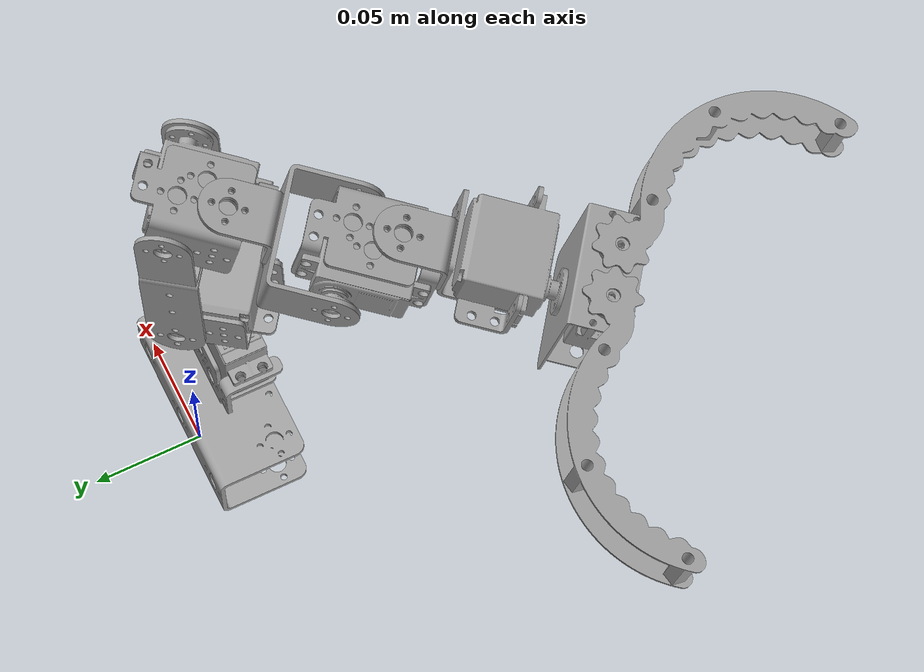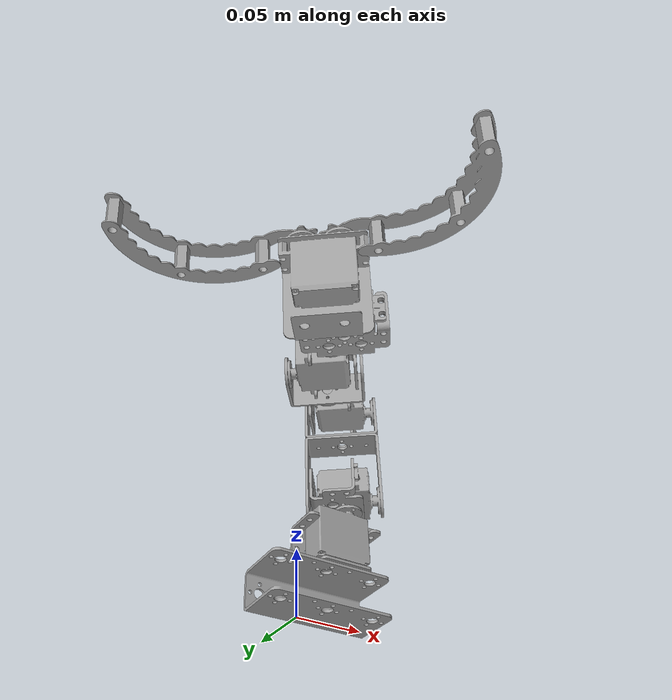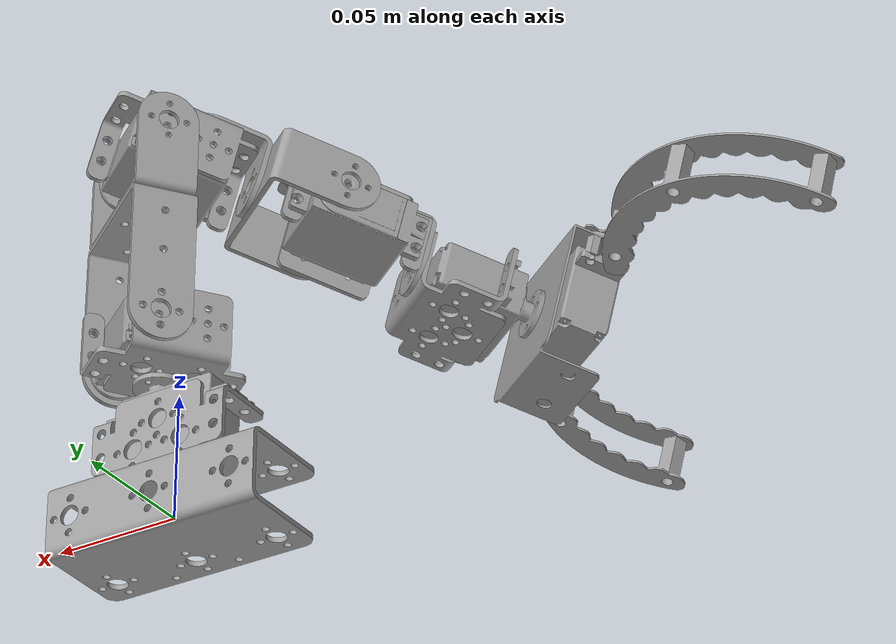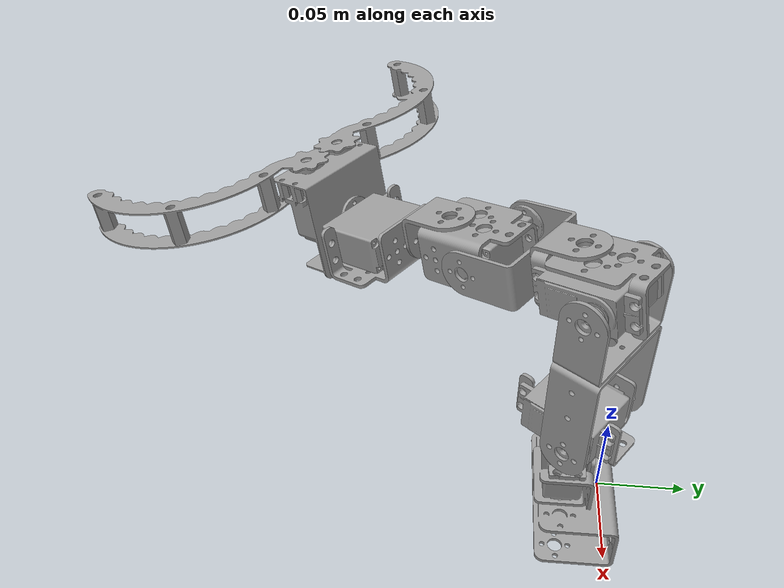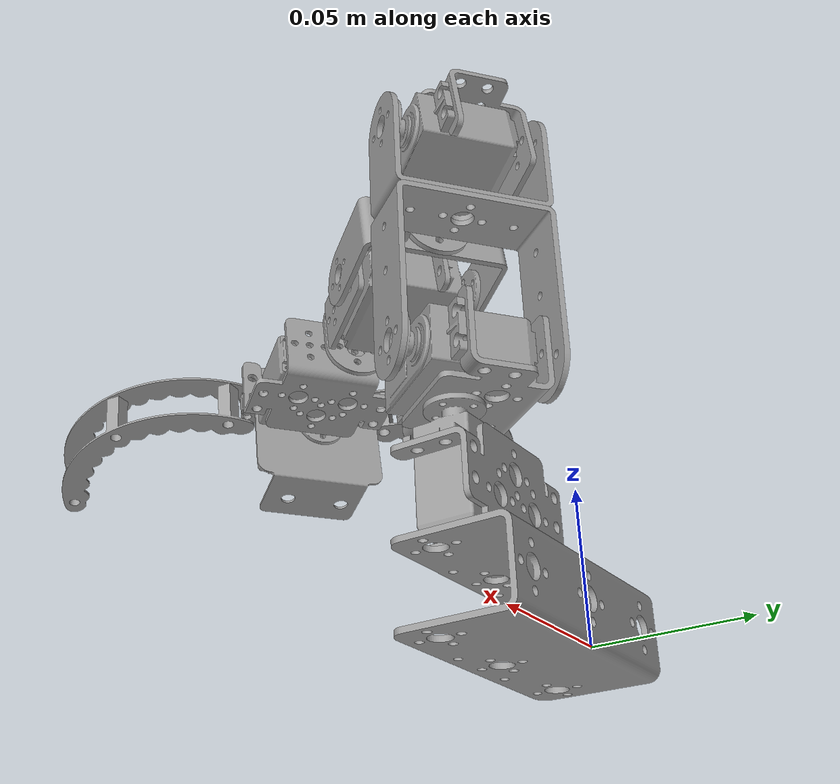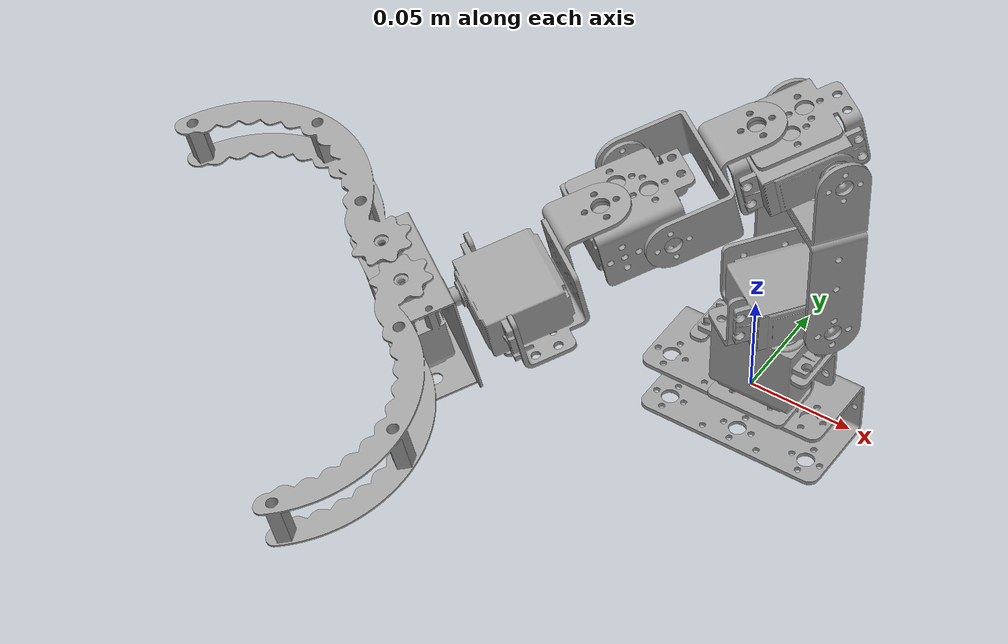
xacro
<?xml version="1.0" ?>
<robot name="fivedofarmzup"
  xmlns:xacro="http://www.ros.org/wiki/xacro">

  <xacro:include filename="$(find fivedofarmzup_description)/urdf/materials.xacro" />
  <xacro:include filename="$(find fivedofarmzup_description)/urdf/fivedofarmzup.trans" />
  <xacro:include filename="$(find fivedofarmzup_description)/urdf/fivedofarmzup_gazebo.xacro" />

  <link name="base_link">
    <inertial>
      <origin xyz="0.008256875926432835 -0.011105592914853562 0.011486765447576857" rpy="0 0 0"/>
      <mass value="0.1384997032843435"/>
      <inertia ixx="4.6e-05" iyy="0.000113" izz="0.000116" ixy="-0.0" iyz="0.0" ixz="-0.0"/>
    </inertial>
    <visual>
      <origin xyz="0 0 0" rpy="0 0 0"/>
      <geometry>
        <mesh filename="package://fivedofarmzup_description/meshes/base_link.stl" scale="0.001 0.001 0.001"/>
      </geometry>
      <material name="steel_satin"/>
    </visual>
    <collision>
      <origin xyz="0 0 0" rpy="0 0 0"/>
      <geometry>
        <mesh filename="package://fivedofarmzup_description/meshes/base_link.stl" scale="0.001 0.001 0.001"/>
      </geometry>
    </collision>
  </link>

  <link name="Servo_Bracket_-_U_Shaped_Defaut_v1_1">
    <inertial>
      <origin xyz="0.009499875926498334 0.007075951002761895 0.014917192812203866" rpy="0 0 0"/>
      <mass value="0.04341034449852496"/>
      <inertia ixx="1.1e-05" iyy="1.8e-05" izz="1.4e-05" ixy="-0.0" iyz="-2e-06" ixz="-0.0"/>
    </inertial>
    <visual>
      <origin xyz="-0.008257 0.025556 -0.025987" rpy="0 0 0"/>
      <geometry>
        <mesh filename="package://fivedofarmzup_description/meshes/Servo_Bracket_-_U_Shaped_Defaut_v1_1.stl" scale="0.001 0.001 0.001"/>
      </geometry>
      <material name="steel_satin"/>
    </visual>
    <collision>
      <origin xyz="-0.008257 0.025556 -0.025987" rpy="0 0 0"/>
      <geometry>
        <mesh filename="package://fivedofarmzup_description/meshes/Servo_Bracket_-_U_Shaped_Defaut_v1_1.stl" scale="0.001 0.001 0.001"/>
      </geometry>
    </collision>
  </link>

  <link name="Standard_Servo__1501MG__v2_1">
    <inertial>
      <origin xyz="-0.024617560067736483 0.0051746413740680584 -0.007685743113773125" rpy="0 0 0"/>
      <mass value="0.23944927912351072"/>
      <inertia ixx="3.7e-05" iyy="6.3e-05" izz="4.1e-05" ixy="0.0" iyz="0.0" ixz="-2e-06"/>
    </inertial>
    <visual>
      <origin xyz="-0.042757 0.030556 -0.058487" rpy="0 0 0"/>
      <geometry>
        <mesh filename="package://fivedofarmzup_description/meshes/Standard_Servo__1501MG__v2_1.stl" scale="0.001 0.001 0.001"/>
      </geometry>
      <material name="steel_satin"/>
    </visual>
    <collision>
      <origin xyz="-0.042757 0.030556 -0.058487" rpy="0 0 0"/>
      <geometry>
        <mesh filename="package://fivedofarmzup_description/meshes/Standard_Servo__1501MG__v2_1.stl" scale="0.001 0.001 0.001"/>
      </geometry>
    </collision>
  </link>

  <link name="Servo_Bracket_-_U_Shaped_Defaut_v1_2">
    <inertial>
      <origin xyz="-0.008965167087897054 0.006515116795615745 0.007423455818892699" rpy="0 0 0"/>
      <mass value="0.04341034449852496"/>
      <inertia ixx="1.3e-05" iyy="1.2e-05" izz="1.8e-05" ixy="-2e-06" iyz="-1e-06" ixz="1e-06"/>
    </inertial>
    <visual>
      <origin xyz="-0.027957 0.025381 -0.075787" rpy="0 0 0"/>
      <geometry>
        <mesh filename="package://fivedofarmzup_description/meshes/Servo_Bracket_-_U_Shaped_Defaut_v1_2.stl" scale="0.001 0.001 0.001"/>
      </geometry>
      <material name="steel_satin"/>
    </visual>
    <collision>
      <origin xyz="-0.027957 0.025381 -0.075787" rpy="0 0 0"/>
      <geometry>
        <mesh filename="package://fivedofarmzup_description/meshes/Servo_Bracket_-_U_Shaped_Defaut_v1_2.stl" scale="0.001 0.001 0.001"/>
      </geometry>
    </collision>
  </link>

  <link name="Standard_Servo__1501MG__v2_2">
    <inertial>
      <origin xyz="-0.020690208941470747 -0.015395926723511004 -0.005175234552414004" rpy="0 0 0"/>
      <mass value="0.23944927912351072"/>
      <inertia ixx="3.8e-05" iyy="4e-05" izz="6.3e-05" ixy="-2e-06" iyz="0.0" ixz="0.0"/>
    </inertial>
    <visual>
      <origin xyz="-0.047913 0.008979 -0.095287" rpy="0 0 0"/>
      <geometry>
        <mesh filename="package://fivedofarmzup_description/meshes/Standard_Servo__1501MG__v2_2.stl" scale="0.001 0.001 0.001"/>
      </geometry>
      <material name="steel_satin"/>
    </visual>
    <collision>
      <origin xyz="-0.047913 0.008979 -0.095287" rpy="0 0 0"/>
      <geometry>
        <mesh filename="package://fivedofarmzup_description/meshes/Standard_Servo__1501MG__v2_2.stl" scale="0.001 0.001 0.001"/>
      </geometry>
    </collision>
  </link>

  <link name="Servo_Bracket_-_U_Shaped_bis_Defaut_v1_1">
    <inertial>
      <origin xyz="-0.02103195136733882 0.015285710216863195 0.030870482183262105" rpy="0 0 0"/>
      <mass value="0.06468278379887461"/>
      <inertia ixx="4.2e-05" iyy="5.2e-05" izz="4.1e-05" ixy="1.6e-05" iyz="-0.0" ixz="0.0"/>
    </inertial>
    <visual>
      <origin xyz="-0.053044 0.031005 -0.090112" rpy="0 0 0"/>
      <geometry>
        <mesh filename="package://fivedofarmzup_description/meshes/Servo_Bracket_-_U_Shaped_bis_Defaut_v1_1.stl" scale="0.001 0.001 0.001"/>
      </geometry>
      <material name="steel_satin"/>
    </visual>
    <collision>
      <origin xyz="-0.053044 0.031005 -0.090112" rpy="0 0 0"/>
      <geometry>
        <mesh filename="package://fivedofarmzup_description/meshes/Servo_Bracket_-_U_Shaped_bis_Defaut_v1_1.stl" scale="0.001 0.001 0.001"/>
      </geometry>
    </collision>
  </link>

  <link name="U_Bracket_Defaut_v1_1">
    <inertial>
      <origin xyz="4.863267648314018e-08 -2.897831404384543e-07 0.011918896080253927" rpy="0 0 0"/>
      <mass value="0.04536490633383511"/>
      <inertia ixx="1.7e-05" iyy="2.4e-05" izz="2.6e-05" ixy="1e-05" iyz="0.0" ixz="0.0"/>
    </inertial>
    <visual>
      <origin xyz="-0.032012 0.015719 -0.143112" rpy="0 0 0"/>
      <geometry>
        <mesh filename="package://fivedofarmzup_description/meshes/U_Bracket_Defaut_v1_1.stl" scale="0.001 0.001 0.001"/>
      </geometry>
      <material name="steel_satin"/>
    </visual>
    <collision>
      <origin xyz="-0.032012 0.015719 -0.143112" rpy="0 0 0"/>
      <geometry>
        <mesh filename="package://fivedofarmzup_description/meshes/U_Bracket_Defaut_v1_1.stl" scale="0.001 0.001 0.001"/>
      </geometry>
    </collision>
  </link>

  <link name="Standard_Servo__1501MG__v2_3">
    <inertial>
      <origin xyz="-0.02145824466800232 0.012973536221972538 0.009585346693335578" rpy="0 0 0"/>
      <mass value="0.23944927912351072"/>
      <inertia ixx="4.8e-05" iyy="5.5e-05" izz="3.8e-05" ixy="1e-05" iyz="3e-06" ixz="4e-06"/>
    </inertial>
    <visual>
      <origin xyz="-0.053044 0.031005 -0.173112" rpy="0 0 0"/>
      <geometry>
        <mesh filename="package://fivedofarmzup_description/meshes/Standard_Servo__1501MG__v2_3.stl" scale="0.001 0.001 0.001"/>
      </geometry>
      <material name="steel_satin"/>
    </visual>
    <collision>
      <origin xyz="-0.053044 0.031005 -0.173112" rpy="0 0 0"/>
      <geometry>
        <mesh filename="package://fivedofarmzup_description/meshes/Standard_Servo__1501MG__v2_3.stl" scale="0.001 0.001 0.001"/>
      </geometry>
    </collision>
  </link>

  <link name="Servo_Bracket_-_Corner_Mount_Defaut_v1_1">
    <inertial>
      <origin xyz="-0.0041617855295247655 -0.005725933855100675 0.010830366515878181" rpy="0 0 0"/>
      <mass value="0.018668931920070433"/>
      <inertia ixx="3e-06" iyy="3e-06" izz="3e-06" ixy="-0.0" iyz="1e-06" ixz="1e-06"/>
    </inertial>
    <visual>
      <origin xyz="-0.031497 0.003161 -0.196493" rpy="0 0 0"/>
      <geometry>
        <mesh filename="package://fivedofarmzup_description/meshes/Servo_Bracket_-_Corner_Mount_Defaut_v1_1.stl" scale="0.001 0.001 0.001"/>
      </geometry>
      <material name="steel_satin"/>
    </visual>
    <collision>
      <origin xyz="-0.031497 0.003161 -0.196493" rpy="0 0 0"/>
      <geometry>
        <mesh filename="package://fivedofarmzup_description/meshes/Servo_Bracket_-_Corner_Mount_Defaut_v1_1.stl" scale="0.001 0.001 0.001"/>
      </geometry>
    </collision>
  </link>

  <link name="U_Bracket_Defaut_v1_2">
    <inertial>
      <origin xyz="-0.0015140184880517472 -0.0020826854169027353 0.011637615110598576" rpy="0 0 0"/>
      <mass value="0.04536490633383511"/>
      <inertia ixx="1.7e-05" iyy="2.3e-05" izz="2.6e-05" ixy="1e-05" iyz="1e-06" ixz="1e-06"/>
    </inertial>
    <visual>
      <origin xyz="-0.02073 0.017976 -0.214461" rpy="0 0 0"/>
      <geometry>
        <mesh filename="package://fivedofarmzup_description/meshes/U_Bracket_Defaut_v1_2.stl" scale="0.001 0.001 0.001"/>
      </geometry>
      <material name="steel_satin"/>
    </visual>
    <collision>
      <origin xyz="-0.02073 0.017976 -0.214461" rpy="0 0 0"/>
      <geometry>
        <mesh filename="package://fivedofarmzup_description/meshes/U_Bracket_Defaut_v1_2.stl" scale="0.001 0.001 0.001"/>
      </geometry>
    </collision>
  </link>

  <link name="Standard_Servo__1501MG__v2_4">
    <inertial>
      <origin xyz="0.0188030780363182 -0.016287350989976787 0.00958605653086722" rpy="0 0 0"/>
      <mass value="0.23944927912351072"/>
      <inertia ixx="4.8e-05" iyy="5.4e-05" izz="3.8e-05" ixy="1e-05" iyz="5e-06" ixz="2e-06"/>
    </inertial>
    <visual>
      <origin xyz="0.004113 0.007933 -0.243752" rpy="0 0 0"/>
      <geometry>
        <mesh filename="package://fivedofarmzup_description/meshes/Standard_Servo__1501MG__v2_4.stl" scale="0.001 0.001 0.001"/>
      </geometry>
      <material name="steel_satin"/>
    </visual>
    <collision>
      <origin xyz="0.004113 0.007933 -0.243752" rpy="0 0 0"/>
      <geometry>
        <mesh filename="package://fivedofarmzup_description/meshes/Standard_Servo__1501MG__v2_4.stl" scale="0.001 0.001 0.001"/>
      </geometry>
    </collision>
  </link>

  <link name="Servo_Bracket_-_Corner_Mount_Defaut_v1_2">
    <inertial>
      <origin xyz="-0.004161821817511239 -0.005725949363095464 0.010830076353466334" rpy="0 0 0"/>
      <mass value="0.018668931920070433"/>
      <inertia ixx="3e-06" iyy="3e-06" izz="3e-06" ixy="-0.0" iyz="1e-06" ixz="1e-06"/>
    </inertial>
    <visual>
      <origin xyz="-0.028862 0.019714 -0.267134" rpy="0 0 0"/>
      <geometry>
        <mesh filename="package://fivedofarmzup_description/meshes/Servo_Bracket_-_Corner_Mount_Defaut_v1_2.stl" scale="0.001 0.001 0.001"/>
      </geometry>
      <material name="steel_satin"/>
    </visual>
    <collision>
      <origin xyz="-0.028862 0.019714 -0.267134" rpy="0 0 0"/>
      <geometry>
        <mesh filename="package://fivedofarmzup_description/meshes/Servo_Bracket_-_Corner_Mount_Defaut_v1_2.stl" scale="0.001 0.001 0.001"/>
      </geometry>
    </collision>
  </link>

  <link name="Servo_Bracket_-_U_Shaped_Defaut_v1_5">
    <inertial>
      <origin xyz="0.0017280381973322559 -0.01378083991578289 0.013036009528027082" rpy="0 0 0"/>
      <mass value="0.04341034449852496"/>
      <inertia ixx="1.3e-05" iyy="1.5e-05" izz="1.5e-05" ixy="3e-06" iyz="2e-06" ixz="1e-06"/>
    </inertial>
    <visual>
      <origin xyz="-0.018095 0.034529 -0.285102" rpy="0 0 0"/>
      <geometry>
        <mesh filename="package://fivedofarmzup_description/meshes/Servo_Bracket_-_U_Shaped_Defaut_v1_5.stl" scale="0.001 0.001 0.001"/>
      </geometry>
      <material name="steel_satin"/>
    </visual>
    <collision>
      <origin xyz="-0.018095 0.034529 -0.285102" rpy="0 0 0"/>
      <geometry>
        <mesh filename="package://fivedofarmzup_description/meshes/Servo_Bracket_-_U_Shaped_Defaut_v1_5.stl" scale="0.001 0.001 0.001"/>
      </geometry>
    </collision>
  </link>

  <link name="Standard_Servo__1501MG__v2_5">
    <inertial>
      <origin xyz="0.017918988263733164 -0.017216754314859712 -0.008621667108157482" rpy="0 0 0"/>
      <mass value="0.23944927912351072"/>
      <inertia ixx="4.5e-05" iyy="5.3e-05" izz="4.2e-05" ixy="1.2e-05" iyz="3e-06" ixz="4e-06"/>
    </inertial>
    <visual>
      <origin xyz="-0.004299 0.027147 -0.317914" rpy="0 0 0"/>
      <geometry>
        <mesh filename="package://fivedofarmzup_description/meshes/Standard_Servo__1501MG__v2_5.stl" scale="0.001 0.001 0.001"/>
      </geometry>
      <material name="steel_satin"/>
    </visual>
    <collision>
      <origin xyz="-0.004299 0.027147 -0.317914" rpy="0 0 0"/>
      <geometry>
        <mesh filename="package://fivedofarmzup_description/meshes/Standard_Servo__1501MG__v2_5.stl" scale="0.001 0.001 0.001"/>
      </geometry>
    </collision>
  </link>

  <link name="Servo_Bracket_-_U_Shaped_Defaut_v1_3">
    <inertial>
      <origin xyz="-0.016206497218868368 0.0076074713874090885 0.024858486220017628" rpy="0 0 0"/>
      <mass value="0.04341034449852496"/>
      <inertia ixx="1.4e-05" iyy="1.8e-05" izz="1.1e-05" ixy="1e-06" iyz="1e-06" ixz="1e-06"/>
    </inertial>
    <visual>
      <origin xyz="-0.0439 0.01416 -0.159779" rpy="0 0 0"/>
      <geometry>
        <mesh filename="package://fivedofarmzup_description/meshes/Servo_Bracket_-_U_Shaped_Defaut_v1_3.stl" scale="0.001 0.001 0.001"/>
      </geometry>
      <material name="steel_satin"/>
    </visual>
    <collision>
      <origin xyz="-0.0439 0.01416 -0.159779" rpy="0 0 0"/>
      <geometry>
        <mesh filename="package://fivedofarmzup_description/meshes/Servo_Bracket_-_U_Shaped_Defaut_v1_3.stl" scale="0.001 0.001 0.001"/>
      </geometry>
    </collision>
  </link>

  <link name="Servo_Bracket_-_U_Shaped_Defaut_v1_4">
    <inertial>
      <origin xyz="0.012239920882205782 -0.013066439075629235 0.02485819605758166" rpy="0 0 0"/>
      <mass value="0.04341034449852496"/>
      <inertia ixx="1.7e-05" iyy="1.5e-05" izz="1.1e-05" ixy="2e-06" iyz="1e-06" ixz="1e-06"/>
    </inertial>
    <visual>
      <origin xyz="-0.01457 0.011312 -0.23042" rpy="0 0 0"/>
      <geometry>
        <mesh filename="package://fivedofarmzup_description/meshes/Servo_Bracket_-_U_Shaped_Defaut_v1_4.stl" scale="0.001 0.001 0.001"/>
      </geometry>
      <material name="steel_satin"/>
    </visual>
    <collision>
      <origin xyz="-0.01457 0.011312 -0.23042" rpy="0 0 0"/>
      <geometry>
        <mesh filename="package://fivedofarmzup_description/meshes/Servo_Bracket_-_U_Shaped_Defaut_v1_4.stl" scale="0.001 0.001 0.001"/>
      </geometry>
    </collision>
  </link>

  <link name="Gripz_v2_1">
    <inertial>
      <origin xyz="0.004727577693130912 0.003819555328425761 0.01661656787495741" rpy="0 0 0"/>
      <mass value="0.26349523744862074"/>
      <inertia ixx="5.2e-05" iyy="5.2e-05" izz="8e-05" ixy="0.0" iyz="-6e-06" ixz="-4e-06"/>
    </inertial>
    <visual>
      <origin xyz="-0.011103 0.042959 -0.333688" rpy="0 0 0"/>
      <geometry>
        <mesh filename="package://fivedofarmzup_description/meshes/Gripz_v2_1.stl" scale="0.001 0.001 0.001"/>
      </geometry>
      <material name="steel_satin"/>
    </visual>
    <collision>
      <origin xyz="-0.011103 0.042959 -0.333688" rpy="0 0 0"/>
      <geometry>
        <mesh filename="package://fivedofarmzup_description/meshes/Gripz_v2_1.stl" scale="0.001 0.001 0.001"/>
      </geometry>
    </collision>
  </link>

  <link name="left-gripper_v3_1">
    <inertial>
      <origin xyz="0.03514942680960949 -0.04627531541596648 0.034010579630415594" rpy="0 0 0"/>
      <mass value="0.024856990525039695"/>
      <inertia ixx="3.2e-05" iyy="2.9e-05" izz="2e-05" ixy="8e-06" iyz="1.3e-05" ixz="-9e-06"/>
    </inertial>
    <visual>
      <origin xyz="-0.038118 0.025688 -0.356143" rpy="0 0 0"/>
      <geometry>
        <mesh filename="package://fivedofarmzup_description/meshes/left-gripper_v3_1.stl" scale="0.001 0.001 0.001"/>
      </geometry>
      <material name="steel_satin"/>
    </visual>
    <collision>
      <origin xyz="-0.038118 0.025688 -0.356143" rpy="0 0 0"/>
      <geometry>
        <mesh filename="package://fivedofarmzup_description/meshes/left-gripper_v3_1.stl" scale="0.001 0.001 0.001"/>
      </geometry>
    </collision>
  </link>

  <link name="right-gripper_v2_1">
    <inertial>
      <origin xyz="-0.05971218738144177 0.028650697898845896 0.012132756868953876" rpy="0 0 0"/>
      <mass value="0.02485699052503968"/>
      <inertia ixx="1.8e-05" iyy="3.3e-05" izz="3e-05" ixy="1.1e-05" iyz="-6e-06" ixz="1.2e-05"/>
    </inertial>
    <visual>
      <origin xyz="-0.019146 0.011906 -0.356167" rpy="0 0 0"/>
      <geometry>
        <mesh filename="package://fivedofarmzup_description/meshes/right-gripper_v2_1.stl" scale="0.001 0.001 0.001"/>
      </geometry>
      <material name="steel_satin"/>
    </visual>
    <collision>
      <origin xyz="-0.019146 0.011906 -0.356167" rpy="0 0 0"/>
      <geometry>
        <mesh filename="package://fivedofarmzup_description/meshes/right-gripper_v2_1.stl" scale="0.001 0.001 0.001"/>
      </geometry>
    </collision>
  </link>

  <joint name="Rigid 1" type="fixed">
    <origin xyz="0.008257 -0.025556 0.025987" rpy="0 0 0"/>
    <parent link="base_link"/>
    <child link="Servo_Bracket_-_U_Shaped_Defaut_v1_1"/>
  </joint>

  <joint name="Rigid 2" type="fixed">
    <origin xyz="0.0345 -0.005 0.0325" rpy="0 0 0"/>
    <parent link="Servo_Bracket_-_U_Shaped_Defaut_v1_1"/>
    <child link="Standard_Servo__1501MG__v2_1"/>
  </joint>

  <joint name="Revolute 3" type="continuous">
    <origin xyz="-0.0148 0.005175 0.0173" rpy="0 0 0"/>
    <parent link="Standard_Servo__1501MG__v2_1"/>
    <child link="Servo_Bracket_-_U_Shaped_Defaut_v1_2"/>
    <axis xyz="0.0 0.0 1.0"/>
  </joint>

  <joint name="Rigid 4" type="fixed">
    <origin xyz="0.019956 0.016402 0.0195" rpy="0 0 0"/>
    <parent link="Servo_Bracket_-_U_Shaped_Defaut_v1_2"/>
    <child link="Standard_Servo__1501MG__v2_2"/>
  </joint>

  <joint name="Revolute 5" type="revolute">
    <origin xyz="0.005131 -0.022026 -0.005175" rpy="0 0 0"/>
    <parent link="Standard_Servo__1501MG__v2_2"/>
    <child link="Servo_Bracket_-_U_Shaped_bis_Defaut_v1_1"/>
    <axis xyz="-0.808932 0.587903 0.0"/>
    <limit upper="1.570796327" lower="-1.570796327" effort="100" velocity="100"/>
  </joint>

  <joint name="Rigid 6" type="fixed">
    <origin xyz="-0.021032 0.015286 0.053" rpy="0 0 0"/>
    <parent link="Servo_Bracket_-_U_Shaped_bis_Defaut_v1_1"/>
    <child link="U_Bracket_Defaut_v1_1"/>
  </joint>

  <joint name="Revolute 7" type="revolute">
    <origin xyz="0.021032 -0.015286 0.03" rpy="0 0 0"/>
    <parent link="U_Bracket_Defaut_v1_1"/>
    <child link="Standard_Servo__1501MG__v2_3"/>
    <axis xyz="-0.808932 0.587903 0.0"/>
    <limit upper="6.283185" lower="3.141593" effort="100" velocity="100"/>
  </joint>

  <joint name="Rigid 9" type="fixed">
    <origin xyz="-0.012403 0.010999 0.036714" rpy="0 0 0"/>
    <parent link="Servo_Bracket_-_U_Shaped_Defaut_v1_3"/>
    <child link="Servo_Bracket_-_Corner_Mount_Defaut_v1_1"/>
  </joint>

  <joint name="Rigid 10" type="fixed">
    <origin xyz="-0.010767 -0.014815 0.017968" rpy="0 0 0"/>
    <parent link="Servo_Bracket_-_Corner_Mount_Defaut_v1_1"/>
    <child link="U_Bracket_Defaut_v1_2"/>
  </joint>

  <joint name="Revolute 11" type="revolute">
    <origin xyz="-0.024843 0.010043 0.029291" rpy="0 0 0"/>
    <parent link="U_Bracket_Defaut_v1_2"/>
    <child link="Standard_Servo__1501MG__v2_4"/>
    <axis xyz="-0.808932 0.587903 0.0"/>
    <limit upper="1.570796" lower="-1.570796" effort="100" velocity="100"/>
  </joint>

  <joint name="Rigid 13" type="fixed">
    <origin xyz="0.014292 -0.008402 0.036714" rpy="0 0 0"/>
    <parent link="Servo_Bracket_-_U_Shaped_Defaut_v1_4"/>
    <child link="Servo_Bracket_-_Corner_Mount_Defaut_v1_2"/>
  </joint>

  <joint name="Rigid 14" type="fixed">
    <origin xyz="-0.010767 -0.014815 0.017968" rpy="0 0 0"/>
    <parent link="Servo_Bracket_-_Corner_Mount_Defaut_v1_2"/>
    <child link="Servo_Bracket_-_U_Shaped_Defaut_v1_5"/>
  </joint>

  <joint name="Rigid 15" type="fixed">
    <origin xyz="-0.013796 0.007382 0.032812" rpy="0 0 0"/>
    <parent link="Servo_Bracket_-_U_Shaped_Defaut_v1_5"/>
    <child link="Standard_Servo__1501MG__v2_5"/>
  </joint>

  <joint name="Rigid 16" type="fixed">
    <origin xyz="-0.009144 0.016845 -0.013333" rpy="0 0 0"/>
    <parent link="Standard_Servo__1501MG__v2_3"/>
    <child link="Servo_Bracket_-_U_Shaped_Defaut_v1_3"/>
  </joint>

  <joint name="Rigid 17" type="fixed">
    <origin xyz="0.018683 -0.003379 -0.013332" rpy="0 0 0"/>
    <parent link="Standard_Servo__1501MG__v2_4"/>
    <child link="Servo_Bracket_-_U_Shaped_Defaut_v1_4"/>
  </joint>

  <joint name="Revolute 19" type="revolute">
    <origin xyz="0.006804 -0.015812 0.015774" rpy="0 0 0"/>
    <parent link="Standard_Servo__1501MG__v2_5"/>
    <child link="Gripz_v2_1"/>
    <axis xyz="-0.127014 -0.174766 0.976383"/>
    <limit upper="1.570796" lower="-1.570796" effort="100" velocity="100"/>
  </joint>

  <joint name="Revolute 21" type="continuous">
    <origin xyz="0.027015 0.017271 0.022455" rpy="0 0 0"/>
    <parent link="Gripz_v2_1"/>
    <child link="left-gripper_v3_1"/>
    <axis xyz="0.574019 0.789827 0.216045"/>
    <limit upper="1.0" lower="-1.0" effort="100" velocity="100"/>
  </joint>

  <joint name="Revolute 22" type="continuous">
    <origin xyz="0.008043 0.031053 0.022479" rpy="0 0 0"/>
    <parent link="Gripz_v2_1"/>
    <child link="right-gripper_v2_1"/>
    <mimic joint = "Revolute 21" multiplier = "-1" />
    <axis xyz="0.574019 0.789827 0.216045"/>
  </joint>

</robot>

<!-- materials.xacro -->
<robot name="fivedofarmzup" xmlns:xacro="http://www.ros.org/wiki/xacro" >

<material name="silver_default">
  <color rgba="0.700 0.700 0.700 1.000"/>
</material>
<material name="steel_satin">
  <color rgba="0.6274509803921569 0.6274509803921569 0.6274509803921569 1.0"/>
</material>

</robot>
